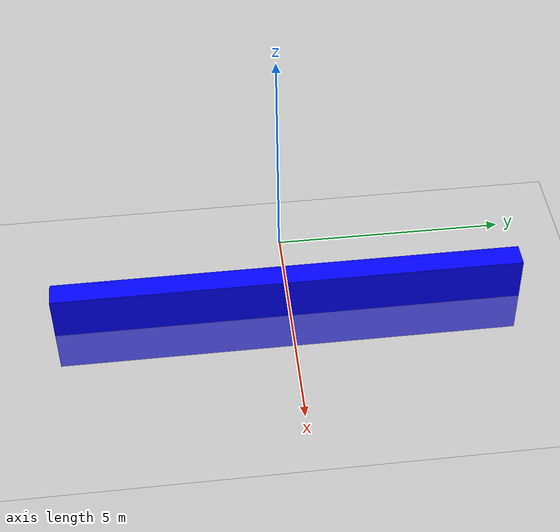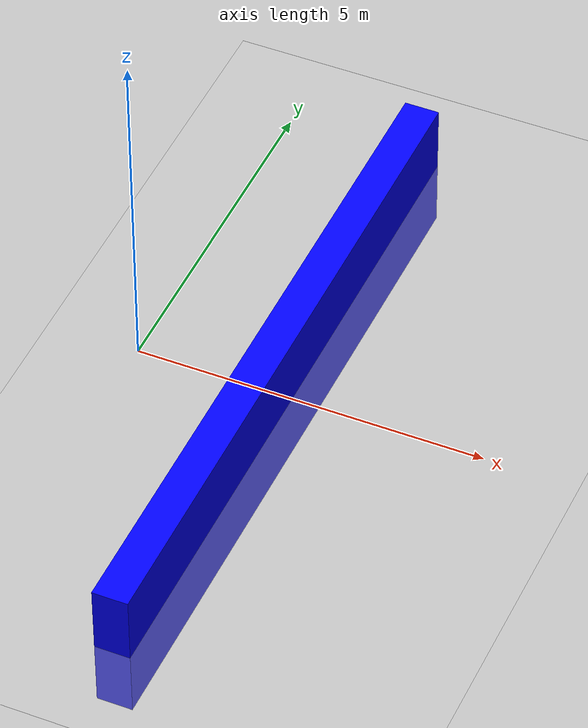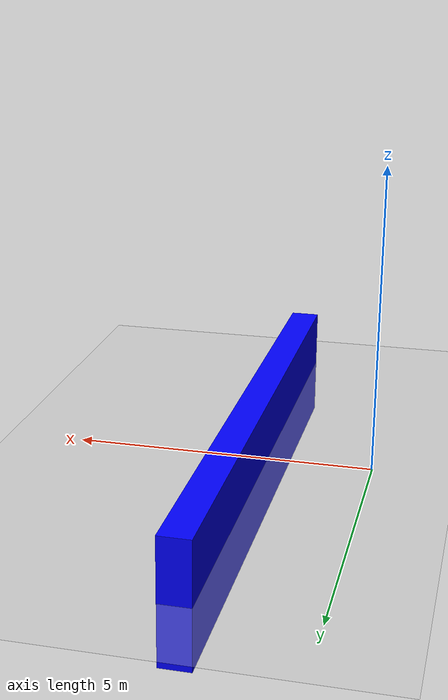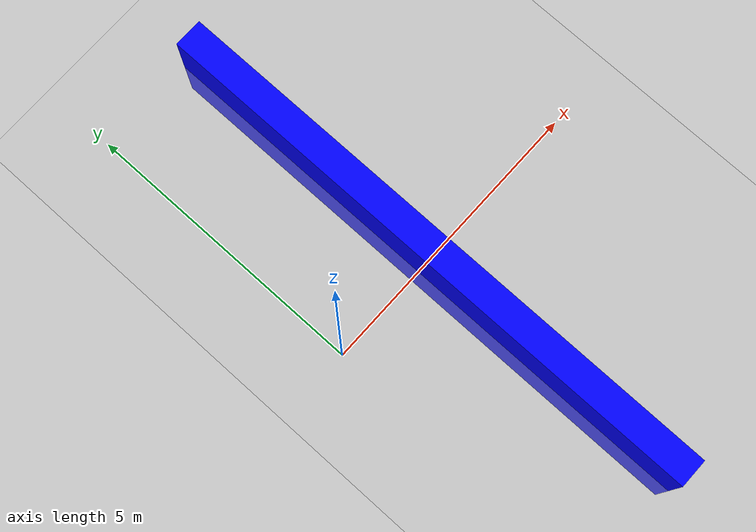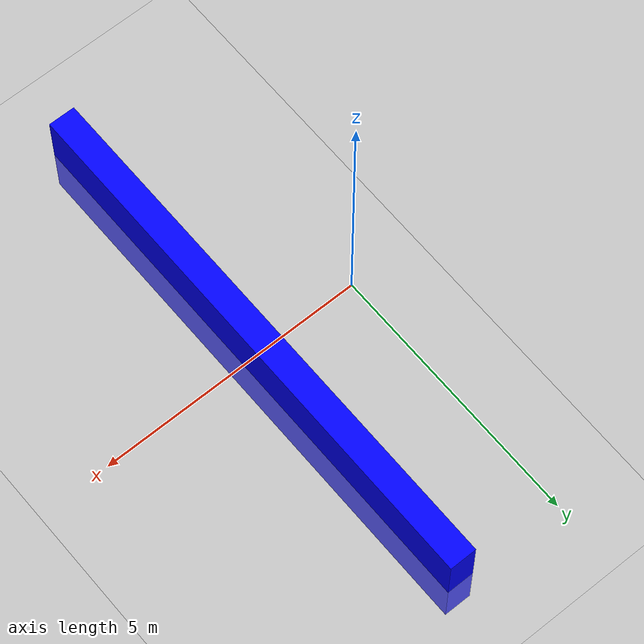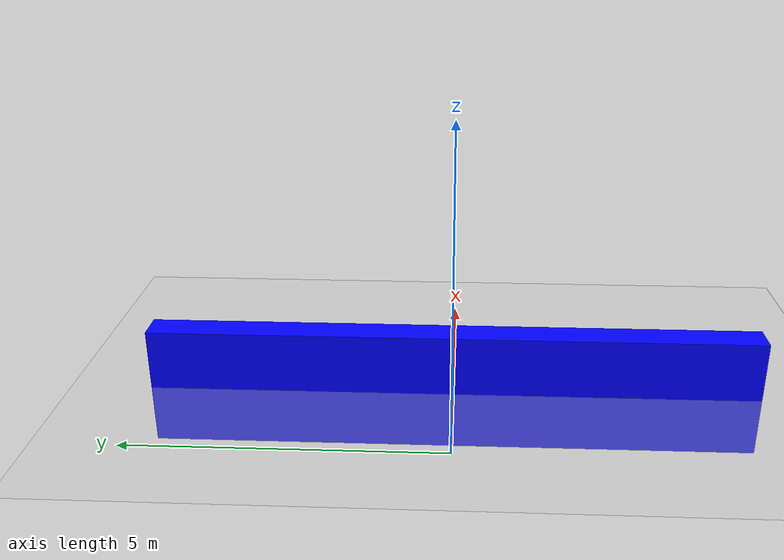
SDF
<?xml version="1.0" ?>
<sdf version="1.8">
    <world name="wall">
        <physics name="1ms" type="ignored">
            <max_step_size>0.001</max_step_size>
            <real_time_factor>1.0</real_time_factor>
        </physics>
        <plugin
            filename="libignition-gazebo-physics-system.so"
            name="ignition::gazebo::systems::Physics">
        </plugin>
        <plugin
            filename="libignition-gazebo-user-commands-system.so"
            name="ignition::gazebo::systems::UserCommands">
        </plugin>
        <plugin
            filename="libignition-gazebo-scene-broadcaster-system.so"
            name="ignition::gazebo::systems::SceneBroadcaster">
        </plugin>

        <light type="directional" name="sun">
            <cast_shadows>true</cast_shadows>
            <pose>0 0 10 0 0 0</pose>
            <diffuse>0.8 0.8 0.8 1</diffuse>
            <specular>0.2 0.2 0.2 1</specular>
            <attenuation>
                <range>1000</range>
                <constant>0.9</constant>
                <linear>0.01</linear>
                <quadratic>0.001</quadratic>
            </attenuation>
            <direction>-0.5 0.1 -0.9</direction>
        </light>

        <model name="ground_plane">
            <static>true</static>
            <link name="link">
                <collision name="collision">
                <geometry>
                    <plane>
		                <normal>0 0 1</normal>
                    </plane>
                </geometry>
                </collision>
                <visual name="visual">
                <geometry>
                    <plane>
		                <normal>0 0 1</normal>
		                <size>10 10</size>
                    </plane>
                </geometry>
                <material>
                    <ambient>0.8 0.8 0.8 1</ambient>
                    <diffuse>0.8 0.8 0.8 1</diffuse>
                    <specular>0.8 0.8 0.8 1</specular>
                </material>
                </visual>
            </link>
        </model>

        <model name='wall'>
			<static>true</static>
			<pose>2 0 0 0 0 0</pose><!--pose relative to the world-->
			<link name='box'>
				<pose/>
				<visual name='visual'>
				    <geometry>
				        <box>
				            <size>0.5 10.0 2.0</size>
				        </box>
				    </geometry>
				    <!--let's add color to our link-->
				    <material>
				        <ambient>0.0 0.0 1.0 1</ambient>
				        <diffuse>0.0 0.0 1.0 1</diffuse>
				        <specular>0.0 0.0 1.0 1</specular>
				    </material>
				</visual>
				<collision name='collision'>
				    <geometry>
				        <box>
				            <size>0.5 10.0 2.0</size>
				        </box>
				    </geometry>
				</collision>
			</link>
		</model>

    </world>
</sdf>
